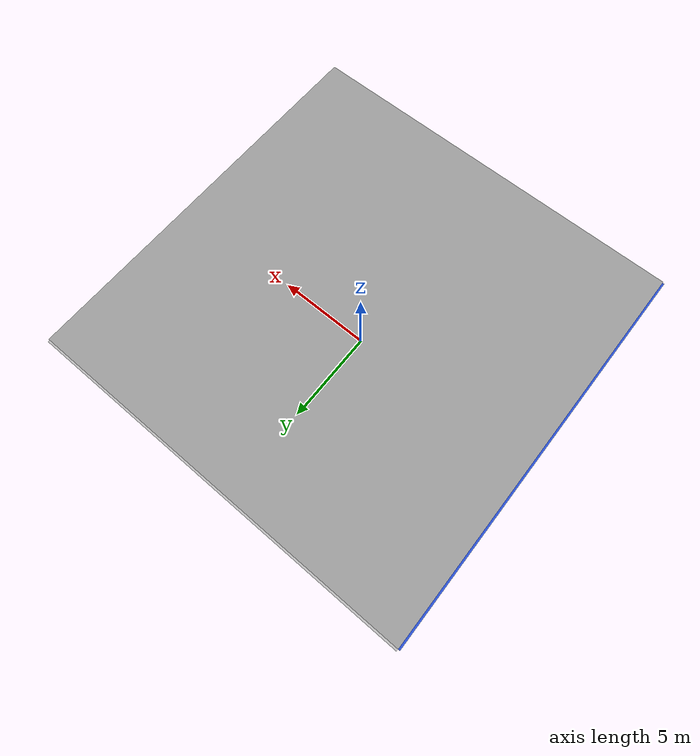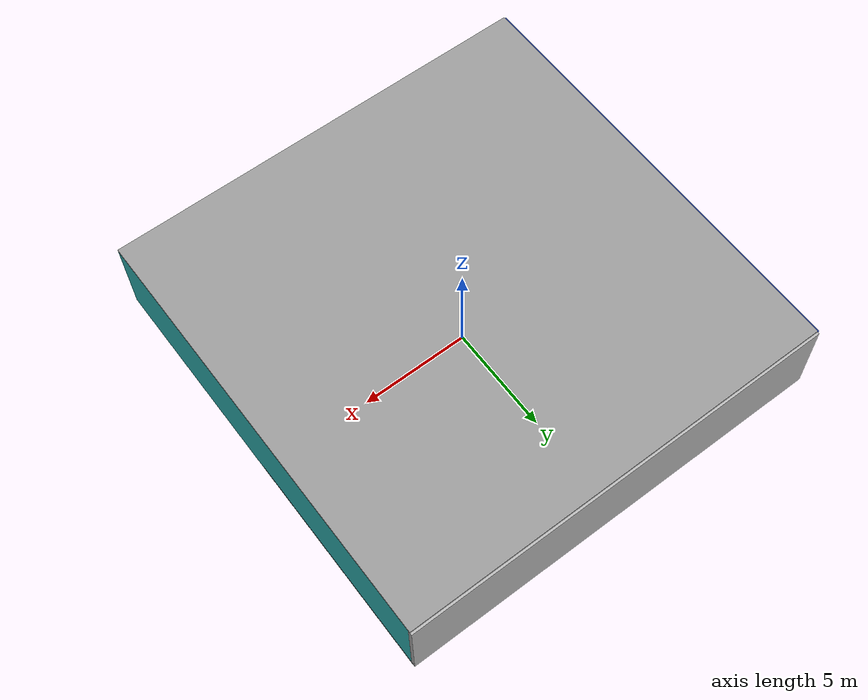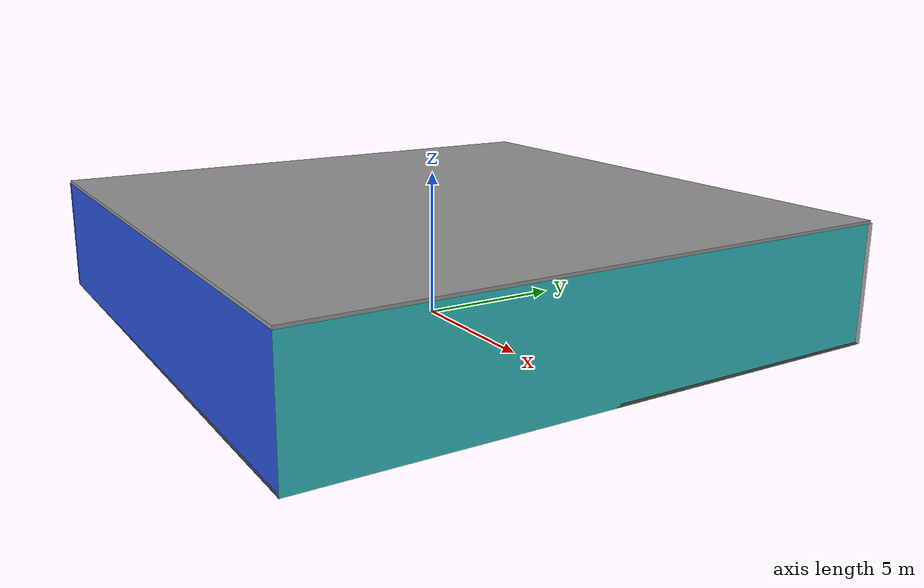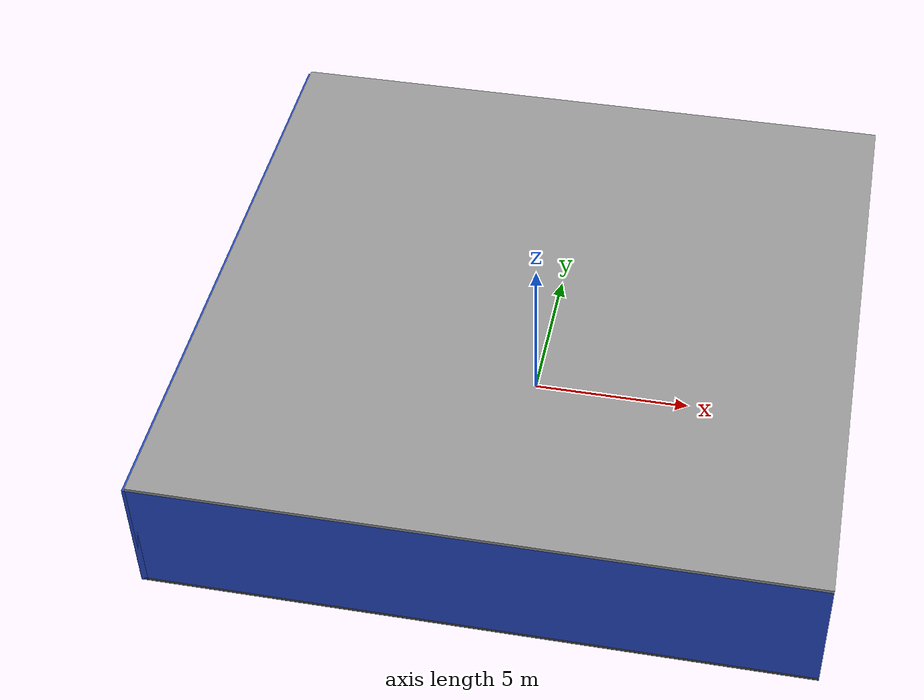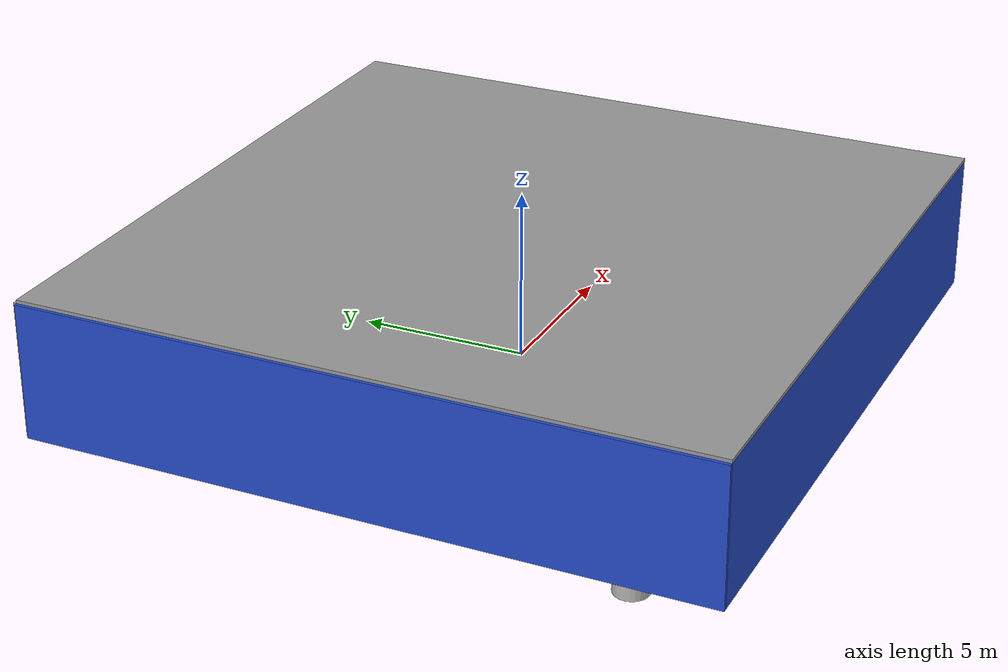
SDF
<sdf version="1.4">
 <world name="default">
  <physics type="ode">
   <max_step_size>0.001</max_step_size>
   <real_time_factor>1</real_time_factor>
   <real_time_update_rate>1000</real_time_update_rate>
   <gravity>0 0 -9.8</gravity>
  </physics>
  <scene><ambient>0.4 0.4 0.4 1</ambient><background>0.7 0.7 0.7 1</background><shadows>1</shadows></scene>
  <model name="Surrounding">
   <static>1</static>
   <link name="Ceiling">
    <collision name="Ceiling_Collision"><geometry><box><size>20 20 0.1</size></box></geometry></collision>
    <visual name="Ceiling_Visual">
     <geometry><box><size>20 20 0.1</size></box></geometry>
     <material>
      <script><uri>file://media/materials/scripts/gazebo.material</uri><name>Gazebo/GreyGradientSky</name></script>
     </material>
    </visual>
    <pose>0 0 4.05 0 0 0</pose>
   </link>
   <link name="Wall_South">
    <collision name="Wall_South_Collision">
     <geometry><box><size>20 0 4</size></box></geometry>
     <pose>0 0 2 0 -0 0</pose>
    </collision>
    <visual name="Wall_South_Visual">
     <pose>0 0 2 0 -0 0</pose>
     <geometry><box><size>20 0 4</size></box></geometry>
     <material>
      <script><uri>file://media/materials/scripts/gazebo.material</uri><name>Gazebo/Blue</name></script>
     </material>
    </visual>
    <velocity_decay><linear>0</linear><angular>0</angular></velocity_decay>
    <pose>0 -10 0 0 -0 0</pose>
   </link>
   <link name="Wall_East">
    <collision name="Wall_21_Collision">
     <geometry><box><size>20 0 4</size></box></geometry>
     <pose>0 0 2 0 -0 0</pose>
    </collision>
    <visual name="Wall_21_Visual">
     <pose>0 0 2 0 -0 0</pose>
     <geometry><box><size>20 0 4</size></box></geometry>
     <material>
      <script>
       <uri>file://media/materials/scripts/gazebo.material</uri>
       <name>Gazebo/TurquoiseGlowOutline</name>
      </script>
     </material>
    </visual>
    <velocity_decay><linear>0</linear><angular>0</angular></velocity_decay>
    <pose>10 0 0 0 -0 1.5708</pose>
   </link>
   <link name="Wall_North">
    <collision name="Wall_22_Collision">
     <geometry><box><size>20 0.2 4</size></box></geometry>
     <pose>0 0 2 0 -0 0</pose>
    </collision>
    <visual name="Wall_22_Visual">
     <pose>0 0 2 0 -0 0</pose>
     <geometry><box><size>20 0.2 4</size></box></geometry>
     <material>
      <script><uri>file://media/materials/scripts/gazebo.material</uri><name>Gazebo/LightOn</name></script>
     </material>
    </visual>
    <velocity_decay><linear>0</linear><angular>0</angular></velocity_decay>
    <pose>0 10 0 0 -0 0</pose>
   </link>
   <link name="Wall_West">
    <collision name="Wall_23_Collision">
     <geometry><box><size>20 0.2 4</size></box></geometry>
     <pose>0 0 2 0 -0 0</pose>
    </collision>
    <visual name="Wall_23_Visual">
     <pose>0 0 2 0 -0 0</pose>
     <geometry><box><size>20 0.2 4</size></box></geometry>
     <material>
      <script><uri>file://media/materials/scripts/gazebo.material</uri><name>Gazebo/BlueGlow</name></script>
     </material>
    </visual>
    <velocity_decay><linear>0</linear><angular>0</angular></velocity_decay>
    <pose>-10 0 0 0 0 -1.5708</pose>
   </link>
   <link name="Ground_link">
    <collision name="collision">
     <pose>0 0 .05 0 -0 0</pose>
     <geometry><box><size>20 20 0.1</size></box></geometry>
    </collision>
    <visual name="visual">
     <pose>0 0 .05 0 -0 0</pose>
     <geometry><box><size>20 20 0.1</size></box></geometry>
     <material>
      <script><uri>file://media/materials/scripts/gazebo.material</uri><name>Gazebo/DarkGrey</name></script>
     </material>
    </visual>
   </link>
   <static>1</static>
  </model>
  <spherical_coordinates>
   <surface_model>EARTH_WGS84</surface_model>
   <latitude_deg>0</latitude_deg>
   <longitude_deg>0</longitude_deg>
   <elevation>0</elevation>
   <heading_deg>0</heading_deg>
  </spherical_coordinates>
  <light name="lightball_0" type="diffuse">
   <diffuse>0.8 0.8 0.8 1</diffuse>
   <specular>0.2 0.2 0.2 1</specular>
   <attenuation>
    <range>100</range>
    <constant>0.7</constant>
    <linear>0.01</linear>
    <quadratic>0.001</quadratic>
   </attenuation>
   <direction>-0.5 0.1 -0.9</direction>
   <pose>-5.72082378408 4.10426345099 3.45649157113 0 0 0</pose>
  </light>
  <light name="lightball_1" type="diffuse">
   <diffuse>0.8 0.8 0.8 1</diffuse>
   <specular>0.2 0.2 0.2 1</specular>
   <attenuation>
    <range>100</range>
    <constant>0.7</constant>
    <linear>0.01</linear>
    <quadratic>0.001</quadratic>
   </attenuation>
   <direction>-0.5 0.1 -0.9</direction>
   <pose>-4.55857840963 -9.1744696621 2.90886974821 0 0 0</pose>
  </light>
  <light name="lightball_2" type="diffuse">
   <diffuse>0.8 0.8 0.8 1</diffuse>
   <specular>0.2 0.2 0.2 1</specular>
   <attenuation>
    <range>100</range>
    <constant>0.7</constant>
    <linear>0.01</linear>
    <quadratic>0.001</quadratic>
   </attenuation>
   <direction>-0.5 0.1 -0.9</direction>
   <pose>-8.82085220042 7.45258894804 0.537361062904 0 0 0</pose>
  </light>
  <light name="lightball_3" type="diffuse">
   <diffuse>0.8 0.8 0.8 1</diffuse>
   <specular>0.2 0.2 0.2 1</specular>
   <attenuation>
    <range>100</range>
    <constant>0.7</constant>
    <linear>0.01</linear>
    <quadratic>0.001</quadratic>
   </attenuation>
   <direction>-0.5 0.1 -0.9</direction>
   <pose>5.95180930539 5.06214778547 1.74080940244 0 0 0</pose>
  </light>
  <light name="lightball_4" type="diffuse">
   <diffuse>0.8 0.8 0.8 1</diffuse>
   <specular>0.2 0.2 0.2 1</specular>
   <attenuation>
    <range>100</range>
    <constant>0.7</constant>
    <linear>0.01</linear>
    <quadratic>0.001</quadratic>
   </attenuation>
   <direction>-0.5 0.1 -0.9</direction>
   <pose>-2.47224734008 -3.29685562288 1.1130426806 0 0 0</pose>
  </light>
  <light name="lightball_5" type="diffuse">
   <diffuse>0.8 0.8 0.8 1</diffuse>
   <specular>0.2 0.2 0.2 1</specular>
   <attenuation>
    <range>100</range>
    <constant>0.7</constant>
    <linear>0.01</linear>
    <quadratic>0.001</quadratic>
   </attenuation>
   <direction>-0.5 0.1 -0.9</direction>
   <pose>4.80686593018 9.40350170497 3.60461206473 0 0 0</pose>
  </light>
  <light name="lightball_6" type="diffuse">
   <diffuse>0.8 0.8 0.8 1</diffuse>
   <specular>0.2 0.2 0.2 1</specular>
   <attenuation>
    <range>100</range>
    <constant>0.7</constant>
    <linear>0.01</linear>
    <quadratic>0.001</quadratic>
   </attenuation>
   <direction>-0.5 0.1 -0.9</direction>
   <pose>9.88308593532 4.35154237569 1.34478931733 0 0 0</pose>
  </light>
  <light name="lightball_7" type="diffuse">
   <diffuse>0.8 0.8 0.8 1</diffuse>
   <specular>0.2 0.2 0.2 1</specular>
   <attenuation>
    <range>100</range>
    <constant>0.7</constant>
    <linear>0.01</linear>
    <quadratic>0.001</quadratic>
   </attenuation>
   <direction>-0.5 0.1 -0.9</direction>
   <pose>-4.63140369129 1.72007481838 2.31799113437 0 0 0</pose>
  </light>
  <include>
   <uri>model://textured_shapes</uri>
   <pose>-8.11676006248 -8.02918737081 0 0 0 1.10906688515</pose>
  </include>
  <include>
   <uri>model://construction_cone</uri>
   <pose>-6.72979741818 4.64331733444 0 0 0 0.317057439938</pose>
  </include>
  <include><uri>model://table</uri><pose>-7.45920723634 7.17473695398 0 0 0 2.13415075227</pose></include>
  <include><uri>model://table</uri><pose>-4.33619715044 3.74242660562 0 0 0 2.56010394438</pose></include>
  <include>
   <uri>model://textured_shapes</uri>
   <pose>1.47103370054 0.96650247446 0 0 0 1.16461724487</pose>
  </include>
 </world>
</sdf>

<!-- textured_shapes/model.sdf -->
<sdf version="1.6">
  <model name="textured_shapes">
    <pose>0 0 0.5 0 0 0</pose>
    <link name="box">
      <pose>0 -1.5 0 0 0 0</pose>
      <collision name="collision">
        <geometry>
          <box>
            <size>1 1 1</size>
          </box>
        </geometry>
      </collision>
      <visual name="visual">
        <geometry>
          <box>
            <size>1 1 1</size>
          </box>
        </geometry>
        <material>
          <script>
            <uri>model://../model_source/models/textured_shapes/materials/scripts</uri>
            <uri>model://../model_source/models/textured_shapes/materials/textures</uri>
            <name>TexturedShape/Squares</name>
          </script>
        </material>
      </visual>
    </link>
    <link name="sphere">
      <collision name="collision">
        <geometry>
          <sphere>
            <radius>0.5</radius>
          </sphere>
        </geometry>
      </collision>
      <visual name="visual">
        <geometry>
          <sphere>
            <radius>0.5</radius>
          </sphere>
        </geometry>
        <material>
          <script>
            <uri>model://../model_source/models/textured_shapes/materials/scripts</uri>
            <uri>model://../model_source/models/textured_shapes/materials/textures</uri>
            <name>TexturedShape/Squares</name>
          </script>
        </material>
      </visual>
    </link>
    <link name="cylinder">
      <pose>0 1.5 0 0 0 0</pose>
      <collision name="collision">
        <geometry>
          <cylinder>
            <radius>0.5</radius>
            <length>1</length>
          </cylinder>
        </geometry>
      </collision>
      <visual name="visual">
        <geometry>
          <cylinder>
            <radius>0.5</radius>
            <length>1</length>
          </cylinder>
        </geometry>
        <material>
          <script>
            <uri>model://../model_source/models/textured_shapes/materials/scripts</uri>
            <uri>model://../model_source/models/textured_shapes/materials/textures</uri>
            <name>TexturedShape/Squares</name>
          </script>
        </material>
      </visual>
    </link>
  </model>
</sdf>

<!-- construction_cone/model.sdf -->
<sdf version="1.5">
  <model name="Construction Cone">
    <link name="link">
      <collision name="collision">
        <geometry>
          <mesh>
            <scale>10 10 10</scale>
            <uri>file://isr-testbed/construction_cone/meshes/construction_cone.dae</uri>
          </mesh>
        </geometry>
      </collision>
      <visual name="visual">
        <geometry>
          <mesh>
            <scale>10 10 10</scale>
            <uri>file://isr-testbed/construction_cone/meshes/construction_cone.dae</uri>
          </mesh>
        </geometry>
      </visual>
    </link>
  </model>
</sdf>

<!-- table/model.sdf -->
<sdf version="1.5">
  <model name="table">
    <static>true</static>
    <link name="link">
      <collision name="surface">
        <pose>0 0 1.0 0 0 0</pose>
        <geometry>
          <box>
            <size>1.5 0.8 0.03</size>
          </box>
        </geometry>
        <surface>
          <friction>
            <ode>
              <mu>0.6</mu>
              <mu2>0.6</mu2>
            </ode>
          </friction>
        </surface>
      </collision>
      <visual name="visual1">
        <pose>0 0 1.0 0 0 0</pose>
        <geometry>
          <box>
            <size>1.5 0.8 0.03</size>
          </box>
        </geometry>
        <material>
          <script>
            <uri>model://media/materials/scripts/gazebo.material</uri>
            <name>Gazebo/Wood</name>
          </script>
        </material>
      </visual>
      <collision name="front_left_leg">
        <pose>0.68 0.38 0.5 0 0 0</pose>
        <geometry>
          <cylinder>
            <radius>0.02</radius>
            <length>1.0</length>
          </cylinder>
        </geometry>
      </collision>
      <visual name="front_left_leg">
        <pose>0.68 0.38 0.5 0 0 0</pose>
        <geometry>
          <cylinder>
            <radius>0.02</radius>
            <length>1.0</length>
          </cylinder>
        </geometry>
        <material>
          <script>
            <uri>model://media/materials/scripts/gazebo.material</uri>
            <name>Gazebo/Grey</name>
          </script>
        </material>
      </visual>
      <collision name="front_right_leg">
        <pose>0.68 -0.38 0.5 0 0 0</pose>
        <geometry>
          <cylinder>
            <radius>0.02</radius>
            <length>1.0</length>
          </cylinder>
        </geometry>
      </collision>
      <visual name="front_right_leg">
        <pose>0.68 -0.38 0.5 0 0 0</pose>
        <geometry>
          <cylinder>
            <radius>0.02</radius>
            <length>1.0</length>
          </cylinder>
        </geometry>
        <material>
          <script>
            <uri>model://media/materials/scripts/gazebo.material</uri>
            <name>Gazebo/Grey</name>
          </script>
        </material>
      </visual>
      <collision name="back_right_leg">
        <pose>-0.68 -0.38 0.5 0 0 0</pose>
        <geometry>
          <cylinder>
            <radius>0.02</radius>
            <length>1.0</length>
          </cylinder>
        </geometry>
      </collision>
      <visual name="back_right_leg">
        <pose>-0.68 -0.38 0.5 0 0 0</pose>
        <geometry>
          <cylinder>
            <radius>0.02</radius>
            <length>1.0</length>
          </cylinder>
        </geometry>
        <material>
          <script>
            <uri>model://media/materials/scripts/gazebo.material</uri>
            <name>Gazebo/Grey</name>
          </script>
        </material>
      </visual>
      <collision name="back_left_leg">
        <pose>-0.68 0.38 0.5 0 0 0</pose>
        <geometry>
          <cylinder>
            <radius>0.02</radius>
            <length>1.0</length>
          </cylinder>
        </geometry>
      </collision>
      <visual name="back_left_leg">
        <pose>-0.68 0.38 0.5 0 0 0</pose>
        <geometry>
          <cylinder>
            <radius>0.02</radius>
            <length>1.0</length>
          </cylinder>
        </geometry>
        <material>
          <script>
            <uri>model://media/materials/scripts/gazebo.material</uri>
            <name>Gazebo/Grey</name>
          </script>
        </material>
      </visual>
    </link>
  </model>
</sdf>
